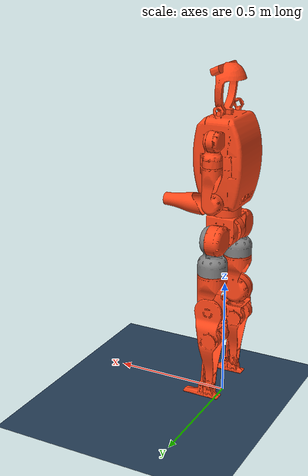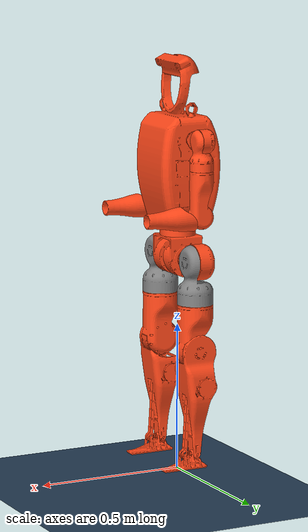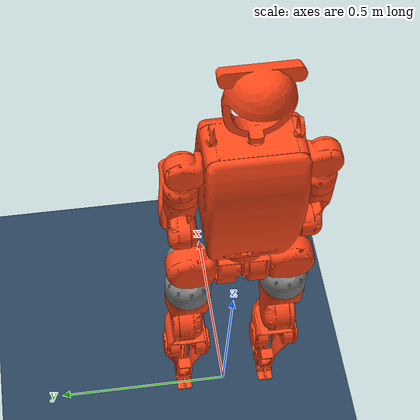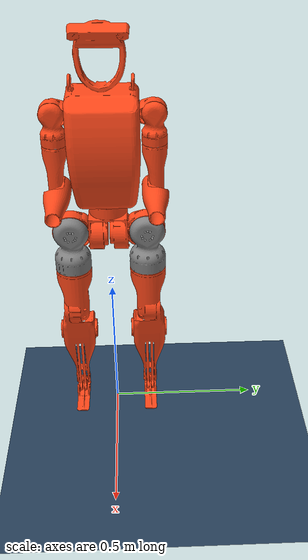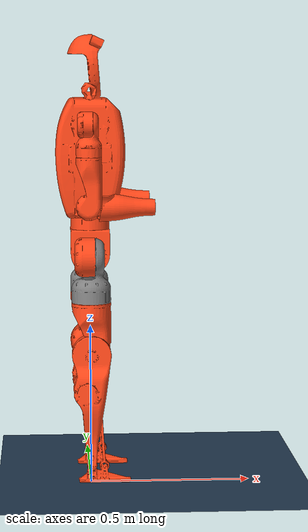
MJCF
<mujoco model="q1 scene">
  <include file="q1.xml"/>

  <statistic center="1.0 0.7 1.0" extent="0.8"/>

  <visual>
    <headlight diffuse="0.6 0.6 0.6" ambient="0.1 0.1 0.1" specular="0.9 0.9 0.9"/>
    <rgba haze="0.15 0.25 0.35 1"/>
    <global azimuth="-140" elevation="-20"/>
  </visual>

  <asset>
    <texture type="skybox" builtin="flat" rgb1="0 0 0" rgb2="0 0 0" width="512" height="3072"/>
    <texture type="2d" name="groundplane" builtin="checker" mark="edge" rgb1="0.2 0.3 0.4" rgb2="0.1 0.2 0.3" markrgb="0.8 0.8 0.8" width="300" height="300"/>
    <material name="groundplane" texture="groundplane" texuniform="true" texrepeat="5 5" reflectance="0.2"/>
  </asset>

  <worldbody>
    <light pos="1 0 3.5" dir="0 0 -1" directional="true"/>
    <geom name="floor" size="0 0 0.05" type="plane" material="groundplane"/>
  </worldbody>
</mujoco>

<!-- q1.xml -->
<mujoco model="q1">
  <default>
    <default class="robot">
      <default class="motor">
        <joint />
        <motor />
      </default>
      <default class="visual">
        <geom material="visualgeom" contype="0" conaffinity="0" group="2" />
      </default>
      <default class="collision">
        <geom material="collision_material" condim="3" contype="0" conaffinity="1" priority="1" group="1" solref="0.005 1" friction="1 0.01 0.01" />
        <equality solimp="0.95 0.95 0.001" solref="0.005 1" />
      </default>
    </default>
    <joint damping="0.001" armature="0.01" frictionloss="0.1"/>
  </default>

  <compiler angle="radian" />

  <option timestep='0.005' iterations='50' solver='PGS' gravity='0 0 -9.81'>
      <flag frictionloss="enable"/>
  </option>

  <asset>
    <material name="default_material" rgba="0.7 0.7 0.7 1" />
    <material name="collision_material" rgba="1.0 0.28 0.1 0.9" />
    <mesh name="pelvis.STL" file="meshes/pelvis.STL" />
    <mesh name="left_hip_pitch_link.STL" file="meshes/left_hip_pitch_link.STL" />
    <mesh name="left_hip_roll_link.STL" file="meshes/left_hip_roll_link.STL" />
    <mesh name="left_hip_yaw_link.STL" file="meshes/left_hip_yaw_link.STL" />
    <mesh name="left_knee_link.STL" file="meshes/left_knee_link.STL" />
    <mesh name="left_ankle_link.STL" file="meshes/left_ankle_link.STL" />
    <mesh name="right_hip_pitch_link.STL" file="meshes/right_hip_pitch_link.STL" />
    <mesh name="right_hip_roll_link.STL" file="meshes/right_hip_roll_link.STL" />
    <mesh name="right_hip_yaw_link.STL" file="meshes/right_hip_yaw_link.STL" />
    <mesh name="right_knee_link.STL" file="meshes/right_knee_link.STL" />
    <mesh name="right_ankle_link.STL" file="meshes/right_ankle_link.STL" />
    <mesh name="torso_link.STL" file="meshes/torso_link.STL" />
    <mesh name="left_shoulder_pitch_link.STL" file="meshes/left_shoulder_pitch_link.STL" />
    <mesh name="left_shoulder_roll_link.STL" file="meshes/left_shoulder_roll_link.STL" />
    <mesh name="left_shoulder_yaw_link.STL" file="meshes/left_shoulder_yaw_link.STL" />
    <mesh name="left_elbow_link.STL" file="meshes/left_elbow_link.STL" />
    <mesh name="right_shoulder_pitch_link.STL" file="meshes/right_shoulder_pitch_link.STL" />
    <mesh name="right_shoulder_roll_link.STL" file="meshes/right_shoulder_roll_link.STL" />
    <mesh name="right_shoulder_yaw_link.STL" file="meshes/right_shoulder_yaw_link.STL" />
    <mesh name="right_elbow_link.STL" file="meshes/right_elbow_link.STL" />
  </asset>

  <worldbody>
    <body name="pelvis" pos="0.00000000 0.00000000 0.80000">
        <inertial pos="3.9952E-07 -5.0661E-07 -0.037741" quat="1.0 0.0 0.0 0.0" mass="4.7536" diaginertia="0.0171677 0.0076331 0.0103668" />
        <joint name="floating_base_joint" type="free" limited="false" actuatorfrclimited="false"/>
        <geom name="pelvis_collision" pos="0 0 0" quat="1.0 0.0 0.0 0.0" type="mesh" mesh="pelvis.STL" class="collision" />
        <geom name="pelvis_visual" pos="0 0 0" quat="1.0 0.0 0.0 0.0" material="" type="mesh" mesh="pelvis.STL" class="visual" />
        <body name="left_hip_pitch_link" pos="0 0.056 -0.0685" quat="1.0 0.0 0.0 0.0">
          <joint name="left_hip_pitch_joint" type="hinge" ref="0.0" class="motor" range="-2.2 1.1" axis="0 1 0" />
          <inertial pos="-0.016351 0.065052 5.0424E-07" quat="1.0 0.0 0.0 0.0" mass="1.8046" diaginertia="0.0034686 0.0020662 0.0024205" />
          <geom name="left_hip_pitch_link_collision" pos="0 0 0" quat="1.0 0.0 0.0 0.0" type="mesh" mesh="left_hip_pitch_link.STL" class="collision" />
          <geom name="left_hip_pitch_link_visual" pos="0 0 0" quat="1.0 0.0 0.0 0.0" material="" type="mesh" mesh="left_hip_pitch_link.STL" class="visual" />
          <body name="left_hip_roll_link" pos="0.012 0.069 0" quat="1.0 0.0 0.0 0.0">
            <joint name="left_hip_roll_joint" type="hinge" ref="0.0" class="motor" range="-0.43 2.6" axis="1 0 0" />
            <inertial pos="-0.0069071 -3.3359E-06 -0.090328" quat="1.0 0.0 0.0 0.0" mass="2.1115" diaginertia="0.0065757 0.0065179 0.0036546" />
            <geom name="left_hip_roll_link_visual" pos="0 0 0" quat="1.0 0.0 0.0 0.0" material="" type="mesh" mesh="left_hip_roll_link.STL" class="visual" />
            <body name="left_hip_yaw_link" pos="-0.012 0 -0.1395" quat="1.0 0.0 0.0 0.0">
              <joint name="left_hip_yaw_joint" type="hinge" ref="0.0" class="motor" range="-0.6 1" axis="0 0 1" />
              <inertial pos="0.0033205 -0.0029528 -0.12778" quat="1.0 0.0 0.0 0.0" mass="2.3488936" diaginertia="0.0104385 0.0113974 0.003719" />
              <geom name="left_hip_yaw_link_collision" pos="0 0 0" quat="1.0 0.0 0.0 0.0" type="mesh" mesh="left_hip_yaw_link.STL" class="collision" />
              <geom name="left_hip_yaw_link_visual" pos="0 0 0" quat="1.0 0.0 0.0 0.0" material="" type="mesh" mesh="left_hip_yaw_link.STL" class="visual" />
              <body name="left_knee_link" pos="0 0.0255 -0.1605" quat="1.0 0.0 0.0 0.0">
                <joint name="left_knee_joint" type="hinge" ref="0.0" class="motor" range="-0.26 2.05" axis="0 1 0" />
                <inertial pos="0.00041557 -0.020195 -0.12173" quat="1.0 0.0 0.0 0.0" mass="2.045647" diaginertia="0.0159872 0.0144751 0.0037803" />
                <geom name="left_knee_link_collision" pos="0 0 0" quat="1.0 0.0 0.0 0.0" type="mesh" mesh="left_knee_link.STL" class="collision" />
                <geom name="left_knee_link_visual" pos="0 0 0" quat="1.0 0.0 0.0 0.0" material="" type="mesh" mesh="left_knee_link.STL" class="visual" />
                <body name="left_ankle_link" pos="0 -0.0255 -0.35" quat="1.0 0.0 0.0 0.0">
                  <joint name="left_ankle_joint" type="hinge" ref="0.0" class="motor" range="-1 1" axis="0 1 0" />
                  <inertial pos="0.0257308929278568 1.82942599347147E-07 -0.0315718467212999" quat="1.0 0.0 0.0 0.0" mass="0.3360867 " diaginertia="0.0001552 0.000583 0.0005283" />
                  <geom name="left_ankle_link_collision" pos="0 0 0" quat="1.0 0.0 0.0 0.0" type="mesh" mesh="left_ankle_link.STL" class="collision" />
                  <geom name="left_ankle_link_visual" pos="0 0 0" quat="1.0 0.0 0.0 0.0" material="" type="mesh" mesh="left_ankle_link.STL" class="visual" />
                </body>
              </body>
            </body>
          </body>
        </body>
        <body name="right_hip_pitch_link" pos="0 -0.056 -0.0685" quat="1.0 0.0 0.0 0.0">
          <joint name="right_hip_pitch_joint" type="hinge" ref="0.0" class="motor" range="-2.2 1.1" axis="0 1 0" />
          <inertial pos="-0.0163510459107585 -0.0650521682520192 -5.63736568870432E-07" quat="1.0 0.0 0.0 0.0" mass="1.7535642703233" diaginertia="0.00317222224998111 0.00190935361897023 0.002034654492597" />
          <geom name="right_hip_pitch_link_collision" pos="0 0 0" quat="1.0 0.0 0.0 0.0" type="mesh" mesh="right_hip_pitch_link.STL" class="collision" />
          <geom name="right_hip_pitch_link_visual" pos="0 0 0" quat="1.0 0.0 0.0 0.0" material="" type="mesh" mesh="right_hip_pitch_link.STL" class="visual" />
          <body name="right_hip_roll_link" pos="0.012 -0.069 0" quat="1.0 0.0 0.0 0.0">
            <joint name="right_hip_roll_joint" type="hinge" ref="0.0" class="motor" range="-2.6 0.43" axis="1 0 0" />
            <inertial pos="-0.0069071 -3.3353E-06 -0.090328" quat="1.0 0.0 0.0 0.0" mass="2.1095097" diaginertia="0.0065735 0.0065148 0.0036498" />
            <geom name="right_hip_roll_link_visual" pos="0 0 0" quat="1.0 0.0 0.0 0.0" material="" type="mesh" mesh="right_hip_roll_link.STL" class="visual" />
            <body name="right_hip_yaw_link" pos="-0.012 0 -0.1395" quat="1.0 0.0 0.0 0.0">
              <joint name="right_hip_yaw_joint" type="hinge" ref="0.0" class="motor" range="-1 0.6" axis="0 0 1" />
              <inertial pos="0.003323 0.0029545 -0.12788" quat="1.0 0.0 0.0 0.0" mass="2.346563" diaginertia="0.01041 0.0113688 0.0037124" />
              <geom name="right_hip_yaw_link_collision" pos="0 0 0" quat="1.0 0.0 0.0 0.0" type="mesh" mesh="right_hip_yaw_link.STL" class="collision" />
              <geom name="right_hip_yaw_link_visual" pos="0 0 0" quat="1.0 0.0 0.0 0.0" material="" type="mesh" mesh="right_hip_yaw_link.STL" class="visual" />
              <body name="right_knee_link" pos="0 -0.0255 -0.1605" quat="1.0 0.0 0.0 0.0">
                <joint name="right_knee_joint" type="hinge" ref="0.0" class="motor" range="-0.26 2.05" axis="0 1 0" />
                <inertial pos="0.00040718 0.01995 -0.12161" quat="1.0 0.0 0.0 0.0" mass="2.0286725" diaginertia="0.0157884 0.0142414 0.0038062" />
                <geom name="right_knee_link_collision" pos="0 0 0" quat="1.0 0.0 0.0 0.0" type="mesh" mesh="right_knee_link.STL" class="collision" />
                <geom name="right_knee_link_visual" pos="0 0 0" quat="1.0 0.0 0.0 0.0" material="" type="mesh" mesh="right_knee_link.STL" class="visual" />
                <body name="right_ankle_link" pos="0 0.0255 -0.35" quat="1.0 0.0 0.0 0.0">
                  <joint name="right_ankle_joint" type="hinge" ref="0.0" class="motor" range="-1 1" axis="0 1 0" />
                  <inertial pos="0.0257308929422537 1.82956781821786E-07 -0.0315718467362111" quat="1.0 0.0 0.0 0.0" mass="0.3340051" diaginertia="0.0001542 0.0005796 0.0005246" />
                  <geom name="right_ankle_link_collision" pos="0 0 0" quat="1.0 0.0 0.0 0.0" type="mesh" mesh="right_ankle_link.STL" class="collision" />
                  <geom name="right_ankle_link_visual" pos="0 0 0" quat="1.0 0.0 0.0 0.0" material="" type="mesh" mesh="right_ankle_link.STL" class="visual" />
                </body>
              </body>
            </body>
          </body>
        </body>
        <body name="torso_link" pos="0 0 0.046" quat="1.0 0.0 0.0 0.0">
          <joint name="torso_joint" type="hinge" ref="0.0" class="motor" range="-1.1 1.1" axis="0 0 1" />
          <inertial pos="-0.000428 4.1805E-07 0.17682" quat="1.0 0.0 0.0 0.0" mass="13.7367215" diaginertia="0.2404409 0.2185825 0.0951078" />
          <geom name="torso_link_collision" pos="0 0 0" quat="1.0 0.0 0.0 0.0" type="mesh" mesh="torso_link.STL" class="collision" />
          <geom name="torso_link_visual" pos="0 0 0" quat="1.0 0.0 0.0 0.0" material="" type="mesh" mesh="torso_link.STL" class="visual" />
          <body name="left_shoulder_pitch_link" pos="0 0.1045 0.2905" quat="1.0 0.0 0.0 0.0">
            <joint name="left_shoulder_pitch_joint" type="hinge" ref="0.0" class="motor" range="-3.14 1.57" axis="0 1 0" />
            <inertial pos="-0.020734 0.034555 0.00012105" quat="1.0 0.0 0.0 0.0" mass="0.5404653" diaginertia="0.0002377 0.0001403 0.0002119" />
            <geom name="left_shoulder_pitch_link_collision" pos="0 0 0" quat="1.0 0.0 0.0 0.0" type="mesh" mesh="left_shoulder_pitch_link.STL" class="collision" />
            <geom name="left_shoulder_pitch_link_visual" pos="0 0 0" quat="1.0 0.0 0.0 0.0" material="" type="mesh" mesh="left_shoulder_pitch_link.STL" class="visual" />
            <body name="left_shoulder_roll_link" pos="0.01 0.049 0" quat="1.0 0.0 0.0 0.0">
              <joint name="left_shoulder_roll_joint" type="hinge" ref="0.0" class="motor" range="-0.01 3.14" axis="1 0 0" />
              <inertial pos="-0.0065007 -0.00036576 -0.038664" quat="1.0 0.0 0.0 0.0" mass="0.5428322" diaginertia="0.0005318 0.000544 0.0001672" />
              <geom name="left_shoulder_roll_link_collision" pos="0 0 0" quat="1.0 0.0 0.0 0.0" type="mesh" mesh="left_shoulder_roll_link.STL" class="collision" />
              <geom name="left_shoulder_roll_link_visual" pos="0 0 0" quat="1.0 0.0 0.0 0.0" material="" type="mesh" mesh="left_shoulder_roll_link.STL" class="visual" />
              <body name="left_shoulder_yaw_link" pos="-0.016 0 -0.101" quat="1.0 0.0 0.0 0.0">
                <joint name="left_shoulder_yaw_joint" type="hinge" ref="0.0" class="motor" range="-0.8 1.2" axis="0 0 1" />
                <inertial pos="0.0068812 0.0047065 -0.084682" quat="1.0 0.0 0.0 0.0" mass="0.6759657" diaginertia="0.0018143 0.0018354 0.0003229" />
                <geom name="left_shoulder_yaw_link_collision" pos="0 0 0" quat="1.0 0.0 0.0 0.0" type="mesh" mesh="left_shoulder_yaw_link.STL" class="collision" />
                <geom name="left_shoulder_yaw_link_visual" pos="0 0 0" quat="1.0 0.0 0.0 0.0" material="" type="mesh" mesh="left_shoulder_yaw_link.STL" class="visual" />
                <body name="left_elbow_link" pos="0 -0.027 -0.149" quat="1.0 0.0 0.0 0.0">
                  <joint name="left_elbow_joint" type="hinge" ref="0.0" class="motor" range="-0.95 1.6" axis="0 1 0" />
                  <inertial pos="0.091408 0.019941 -0.0026698" quat="1.0 0.0 0.0 0.0" mass="0.3412209" diaginertia="0.0003745 0.0015061 0.0015652" />
                  <geom name="left_elbow_link_collision" pos="0 0 0" quat="1.0 0.0 0.0 0.0" type="mesh" mesh="left_elbow_link.STL" class="collision" />
                  <geom name="left_elbow_link_visual" pos="0 0 0" quat="1.0 0.0 0.0 0.0" material="" type="mesh" mesh="left_elbow_link.STL" class="visual" />
                </body>
              </body>
            </body>
          </body>
          <body name="right_shoulder_pitch_link" pos="0 -0.1045 0.2905" quat="1.0 0.0 0.0 0.0">
            <joint name="right_shoulder_pitch_joint" type="hinge" ref="0.0" class="motor" range="-3.14 1.57" axis="0 1 0" />
            <inertial pos="-0.020734 -0.034555 -0.00012105" quat="1.0 0.0 0.0 0.0" mass="0.5404653" diaginertia="0.0002377 0.0001403 0.0002119" />
            <geom name="right_shoulder_pitch_link_collision" pos="0 0 0" quat="1.0 0.0 0.0 0.0" type="mesh" mesh="right_shoulder_pitch_link.STL" class="collision" />
            <geom name="right_shoulder_pitch_link_visual" pos="0 0 0" quat="1.0 0.0 0.0 0.0" material="" type="mesh" mesh="right_shoulder_pitch_link.STL" class="visual" />
            <body name="right_shoulder_roll_link" pos="0.01 -0.049 0" quat="1.0 0.0 0.0 0.0">
              <joint name="right_shoulder_roll_joint" type="hinge" ref="0.0" class="motor" range="-3.4 0.01" axis="1 0 0" />
              <inertial pos="-0.0065007 -0.00036576 -0.038664" quat="1.0 0.0 0.0 0.0" mass="0.5428322" diaginertia="0.0005318 0.000544 0.0001672" />
              <geom name="right_shoulder_roll_link_collision" pos="0 0 0" quat="1.0 0.0 0.0 0.0" type="mesh" mesh="right_shoulder_roll_link.STL" class="collision" />
              <geom name="right_shoulder_roll_link_visual" pos="0 0 0" quat="1.0 0.0 0.0 0.0" material="" type="mesh" mesh="right_shoulder_roll_link.STL" class="visual" />
              <body name="right_shoulder_yaw_link" pos="-0.016 0 -0.101" quat="1.0 0.0 0.0 0.0">
                <joint name="right_shoulder_yaw_joint" type="hinge" ref="0.0" class="motor" range="-1.2 0.8" axis="0 0 1" />
                <inertial pos="0.0067685 -0.0047145 -0.08462" quat="1.0 0.0 0.0 0.0" mass="0.67597" diaginertia="0.0018143 0.0018354 0.0003229" />
                <geom name="right_shoulder_yaw_link_collision" pos="0 0 0" quat="1.0 0.0 0.0 0.0" type="mesh" mesh="right_shoulder_yaw_link.STL" class="collision" />
                <geom name="right_shoulder_yaw_link_visual" pos="0 0 0" quat="1.0 0.0 0.0 0.0" material="" type="mesh" mesh="right_shoulder_yaw_link.STL" class="visual" />
                <body name="right_elbow_link" pos="0 0.027 -0.149" quat="1.0 0.0 0.0 0.0">
                  <joint name="right_elbow_joint" type="hinge" ref="0.0" class="motor" range="-0.95 1.6" axis="0 1 0" />
                  <inertial pos="0.091408 -0.019941 -0.0026722" quat="1.0 0.0 0.0 0.0" mass="0.3412209" diaginertia="0.0003745 0.0015061 0.0015652" />
                  <geom name="right_elbow_link_collision" pos="0 0 0" quat="1.0 0.0 0.0 0.0" type="mesh" mesh="right_elbow_link.STL" class="collision" />
                  <geom name="right_elbow_link_visual" pos="0 0 0" quat="1.0 0.0 0.0 0.0" material="" type="mesh" mesh="right_elbow_link.STL" class="visual" />
                </body>
              </body>
            </body>
          </body>
        </body>
     </body>
  </worldbody>

  <actuator>
    <motor name="left_hip_pitch_joint_ctrl" joint="left_hip_pitch_joint" class="motor" />
    <motor name="left_hip_roll_joint_ctrl" joint="left_hip_roll_joint" class="motor" />
    <motor name="left_hip_yaw_joint_ctrl" joint="left_hip_yaw_joint" class="motor" />
    <motor name="left_knee_joint_ctrl" joint="left_knee_joint" class="motor" />
    <motor name="left_ankle_joint_ctrl" joint="left_ankle_joint" class="motor" />
    <motor name="right_hip_pitch_joint_ctrl" joint="right_hip_pitch_joint" class="motor" />
    <motor name="right_hip_roll_joint_ctrl" joint="right_hip_roll_joint" class="motor" />
    <motor name="right_hip_yaw_joint_ctrl" joint="right_hip_yaw_joint" class="motor" />
    <motor name="right_knee_joint_ctrl" joint="right_knee_joint" class="motor" />
    <motor name="right_ankle_joint_ctrl" joint="right_ankle_joint" class="motor" />
    <motor name="torso_joint_ctrl" joint="torso_joint" class="motor" />
    <motor name="left_shoulder_pitch_joint_ctrl" joint="left_shoulder_pitch_joint" class="motor" />
    <motor name="left_shoulder_roll_joint_ctrl" joint="left_shoulder_roll_joint" class="motor" />
    <motor name="left_shoulder_yaw_joint_ctrl" joint="left_shoulder_yaw_joint" class="motor" />
    <motor name="left_elbow_joint_ctrl" joint="left_elbow_joint" class="motor" />
    <motor name="right_shoulder_pitch_joint_ctrl" joint="right_shoulder_pitch_joint" class="motor" />
    <motor name="right_shoulder_roll_joint_ctrl" joint="right_shoulder_roll_joint" class="motor" />
    <motor name="right_shoulder_yaw_joint_ctrl" joint="right_shoulder_yaw_joint" class="motor" />
    <motor name="right_elbow_joint_ctrl" joint="right_elbow_joint" class="motor" />
  </actuator>

  <contact>
    <exclude body1="pelvis" body2="left_hip_pitch_link" />
    <exclude body1="left_hip_yaw_link" body2="left_knee_link" />
    <exclude body1="left_knee_link" body2="left_ankle_link" />
    <exclude body1="pelvis" body2="right_hip_pitch_link" />
    <exclude body1="right_hip_yaw_link" body2="right_knee_link" />
    <exclude body1="right_knee_link" body2="right_ankle_link" />
    <exclude body1="pelvis" body2="torso_link" />
    <exclude body1="torso_link" body2="left_shoulder_pitch_link" />
    <exclude body1="left_shoulder_pitch_link" body2="left_shoulder_roll_link" />
    <exclude body1="left_shoulder_roll_link" body2="left_shoulder_yaw_link" />
    <exclude body1="left_shoulder_yaw_link" body2="left_elbow_link" />
    <exclude body1="torso_link" body2="right_shoulder_pitch_link" />
    <exclude body1="right_shoulder_pitch_link" body2="right_shoulder_roll_link" />
    <exclude body1="right_shoulder_roll_link" body2="right_shoulder_yaw_link" />
    <exclude body1="right_shoulder_yaw_link" body2="right_elbow_link" />
  </contact>

</mujoco>
